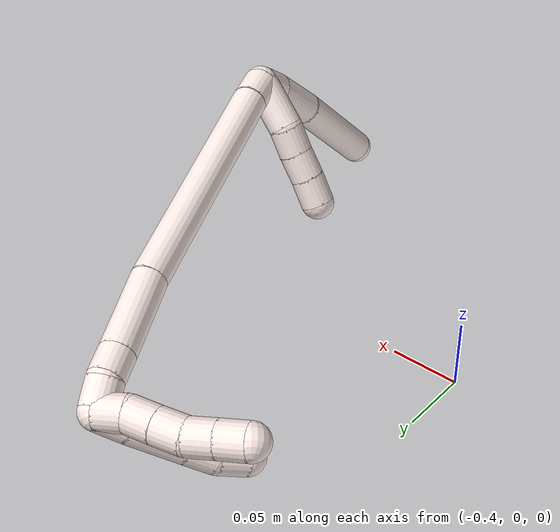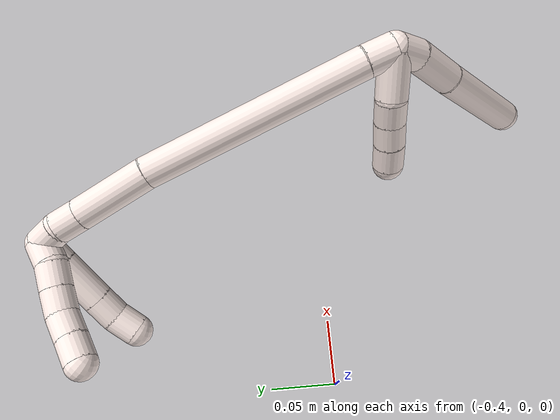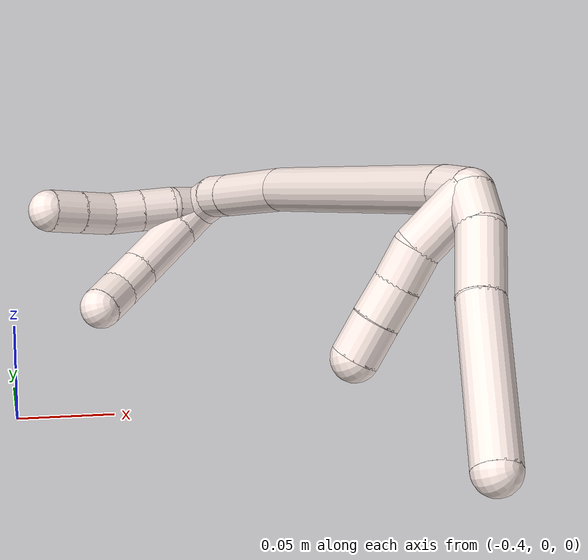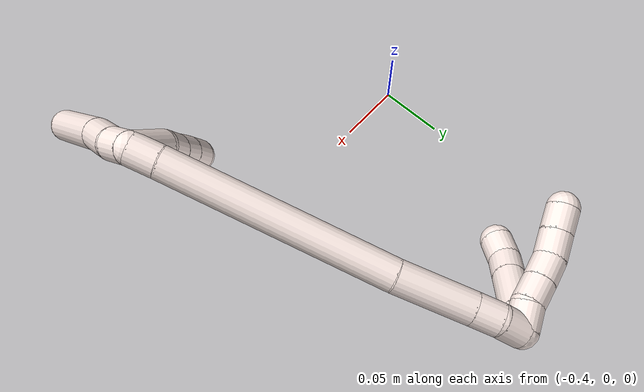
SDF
<sdf version="1.7">
 <world name="default">
  <model name="11">
   <static>0</static>
   <link name="11">
    <collision name="collision-cylinder-e_1_2_8">
     <pose>0.005707 -0.009033 -0.004207 2.00668 0.520073 0.790871</pose>
     <geometry><cylinder><radius>0.0125</radius><length>0.022967</length></cylinder></geometry>
     <surface>
      <friction><ode><mu>1.16</mu><mu2>1.16</mu2><slip1>0</slip1><slip2>0</slip2></ode></friction>
      <contact><ode><kp>1e+06</kp><kd>1</kd><max_vel>0</max_vel><min_depth>0.001</min_depth></ode></contact>
     </surface>
    </collision>
    <visual name="visual-cylinder-e_1_2_8">
     <pose>0.005707 -0.009033 -0.004207 2.00668 0.520073 0.790871</pose>
     <geometry><cylinder><radius>0.0125</radius><length>0.022967</length></cylinder></geometry>
     <material><ambient>1 0.933333 0.909804 1</ambient></material>
    </visual>
    <collision name="collision-cylinder-e_2_8_9">
     <pose>0.023161 -0.033569 -0.011413 1.76183 0.639657 0.763405</pose>
     <geometry><cylinder><radius>0.0125</radius><length>0.039361</length></cylinder></geometry>
     <surface>
      <friction><ode><mu>1.16</mu><mu2>1.16</mu2><slip1>0</slip1><slip2>0</slip2></ode></friction>
      <contact><ode><kp>1e+06</kp><kd>1</kd><max_vel>0</max_vel><min_depth>0.001</min_depth></ode></contact>
     </surface>
    </collision>
    <visual name="visual-cylinder-e_2_8_9">
     <pose>0.023161 -0.033569 -0.011413 1.76183 0.639657 0.763405</pose>
     <geometry><cylinder><radius>0.0125</radius><length>0.039361</length></cylinder></geometry>
     <material><ambient>1 0.933333 0.909804 1</ambient></material>
    </visual>
    <collision name="collision-cylinder-e_3_9_6">
     <pose>0.057748 -0.085632 -0.022366 1.78504 0.548043 0.671265</pose>
     <geometry><cylinder><radius>0.0125</radius><length>0.087672</length></cylinder></geometry>
     <surface>
      <friction><ode><mu>1.16</mu><mu2>1.16</mu2><slip1>0</slip1><slip2>0</slip2></ode></friction>
      <contact><ode><kp>1e+06</kp><kd>1</kd><max_vel>0</max_vel><min_depth>0.001</min_depth></ode></contact>
     </surface>
    </collision>
    <visual name="visual-cylinder-e_3_9_6">
     <pose>0.057748 -0.085632 -0.022366 1.78504 0.548043 0.671265</pose>
     <geometry><cylinder><radius>0.0125</radius><length>0.087672</length></cylinder></geometry>
     <material><ambient>1 0.933333 0.909804 1</ambient></material>
    </visual>
    <collision name="collision-cylinder-e_1_2_10">
     <pose>0.008967 -0.009202 0.013482 0.598888 0.502363 0.158109</pose>
     <geometry><cylinder><radius>0.0125</radius><length>0.037247</length></cylinder></geometry>
     <surface>
      <friction><ode><mu>1.16</mu><mu2>1.16</mu2><slip1>0</slip1><slip2>0</slip2></ode></friction>
      <contact><ode><kp>1e+06</kp><kd>1</kd><max_vel>0</max_vel><min_depth>0.001</min_depth></ode></contact>
     </surface>
    </collision>
    <visual name="visual-cylinder-e_1_2_10">
     <pose>0.008967 -0.009202 0.013482 0.598888 0.502363 0.158109</pose>
     <geometry><cylinder><radius>0.0125</radius><length>0.037247</length></cylinder></geometry>
     <material><ambient>1 0.933333 0.909804 1</ambient></material>
    </visual>
    <collision name="collision-cylinder-e_2_10_11">
     <pose>0.021674 -0.025658 0.033119 0.867227 0.374466 0.174985</pose>
     <geometry><cylinder><radius>0.0125</radius><length>0.020446</length></cylinder></geometry>
     <surface>
      <friction><ode><mu>1.16</mu><mu2>1.16</mu2><slip1>0</slip1><slip2>0</slip2></ode></friction>
      <contact><ode><kp>1e+06</kp><kd>1</kd><max_vel>0</max_vel><min_depth>0.001</min_depth></ode></contact>
     </surface>
    </collision>
    <visual name="visual-cylinder-e_2_10_11">
     <pose>0.021674 -0.025658 0.033119 0.867227 0.374466 0.174985</pose>
     <geometry><cylinder><radius>0.0125</radius><length>0.020446</length></cylinder></geometry>
     <material><ambient>1 0.933333 0.909804 1</ambient></material>
    </visual>
    <collision name="collision-cylinder-e_3_11_12">
     <pose>0.029741 -0.039969 0.045502 0.847663 0.431071 0.196919</pose>
     <geometry><cylinder><radius>0.0125</radius><length>0.020715</length></cylinder></geometry>
     <surface>
      <friction><ode><mu>1.16</mu><mu2>1.16</mu2><slip1>0</slip1><slip2>0</slip2></ode></friction>
      <contact><ode><kp>1e+06</kp><kd>1</kd><max_vel>0</max_vel><min_depth>0.001</min_depth></ode></contact>
     </surface>
    </collision>
    <visual name="visual-cylinder-e_3_11_12">
     <pose>0.029741 -0.039969 0.045502 0.847663 0.431071 0.196919</pose>
     <geometry><cylinder><radius>0.0125</radius><length>0.020715</length></cylinder></geometry>
     <material><ambient>1 0.933333 0.909804 1</ambient></material>
    </visual>
    <collision name="collision-cylinder-e_4_12_5">
     <pose>0.038088 -0.054559 0.058333 0.851159 0.381491 0.174606</pose>
     <geometry><cylinder><radius>0.0125</radius><length>0.021591</length></cylinder></geometry>
     <surface>
      <friction><ode><mu>1.16</mu><mu2>1.16</mu2><slip1>0</slip1><slip2>0</slip2></ode></friction>
      <contact><ode><kp>1e+06</kp><kd>1</kd><max_vel>0</max_vel><min_depth>0.001</min_depth></ode></contact>
     </surface>
    </collision>
    <visual name="visual-cylinder-e_4_12_5">
     <pose>0.038088 -0.054559 0.058333 0.851159 0.381491 0.174606</pose>
     <geometry><cylinder><radius>0.0125</radius><length>0.021591</length></cylinder></geometry>
     <material><ambient>1 0.933333 0.909804 1</ambient></material>
    </visual>
    <collision name="collision-cylinder-e_1_2_13">
     <pose>-0.004364 0.002376 0.010124 -0.230523 -0.397322 0.046606</pose>
     <geometry><cylinder><radius>0.0125</radius><length>0.022554</length></cylinder></geometry>
     <surface>
      <friction><ode><mu>1.16</mu><mu2>1.16</mu2><slip1>0</slip1><slip2>0</slip2></ode></friction>
      <contact><ode><kp>1e+06</kp><kd>1</kd><max_vel>0</max_vel><min_depth>0.001</min_depth></ode></contact>
     </surface>
    </collision>
    <visual name="visual-cylinder-e_1_2_13">
     <pose>-0.004364 0.002376 0.010124 -0.230523 -0.397322 0.046606</pose>
     <geometry><cylinder><radius>0.0125</radius><length>0.022554</length></cylinder></geometry>
     <material><ambient>1 0.933333 0.909804 1</ambient></material>
    </visual>
    <collision name="collision-cylinder-e_2_13_14">
     <pose>-0.041951 0.017623 0.101895 -0.15636 -0.382185 0.030308</pose>
     <geometry><cylinder><radius>0.0125</radius><length>0.178168</length></cylinder></geometry>
     <surface>
      <friction><ode><mu>1.16</mu><mu2>1.16</mu2><slip1>0</slip1><slip2>0</slip2></ode></friction>
      <contact><ode><kp>1e+06</kp><kd>1</kd><max_vel>0</max_vel><min_depth>0.001</min_depth></ode></contact>
     </surface>
    </collision>
    <visual name="visual-cylinder-e_2_13_14">
     <pose>-0.041951 0.017623 0.101895 -0.15636 -0.382185 0.030308</pose>
     <geometry><cylinder><radius>0.0125</radius><length>0.178168</length></cylinder></geometry>
     <material><ambient>1 0.933333 0.909804 1</ambient></material>
    </visual>
    <collision name="collision-cylinder-e_3_14_15">
     <pose>-0.083958 0.033656 0.211547 -0.11241 -0.302112 0.017128</pose>
     <geometry><cylinder><radius>0.0125</radius><length>0.059037</length></cylinder></geometry>
     <surface>
      <friction><ode><mu>1.16</mu><mu2>1.16</mu2><slip1>0</slip1><slip2>0</slip2></ode></friction>
      <contact><ode><kp>1e+06</kp><kd>1</kd><max_vel>0</max_vel><min_depth>0.001</min_depth></ode></contact>
     </surface>
    </collision>
    <visual name="visual-cylinder-e_3_14_15">
     <pose>-0.083958 0.033656 0.211547 -0.11241 -0.302112 0.017128</pose>
     <geometry><cylinder><radius>0.0125</radius><length>0.059037</length></cylinder></geometry>
     <material><ambient>1 0.933333 0.909804 1</ambient></material>
    </visual>
    <collision name="collision-cylinder-e_4_15_16">
     <pose>-0.095869 0.037964 0.249089 -0.119634 -0.314868 0.019014</pose>
     <geometry><cylinder><radius>0.0125</radius><length>0.020207</length></cylinder></geometry>
     <surface>
      <friction><ode><mu>1.16</mu><mu2>1.16</mu2><slip1>0</slip1><slip2>0</slip2></ode></friction>
      <contact><ode><kp>1e+06</kp><kd>1</kd><max_vel>0</max_vel><min_depth>0.001</min_depth></ode></contact>
     </surface>
    </collision>
    <visual name="visual-cylinder-e_4_15_16">
     <pose>-0.095869 0.037964 0.249089 -0.119634 -0.314868 0.019014</pose>
     <geometry><cylinder><radius>0.0125</radius><length>0.020207</length></cylinder></geometry>
     <material><ambient>1 0.933333 0.909804 1</ambient></material>
    </visual>
    <collision name="collision-cylinder-e_5_16_1">
     <pose>-0.101113 0.037322 0.268254 0.183741 -0.212692 -0.019669</pose>
     <geometry><cylinder><radius>0.0125</radius><length>0.020034</length></cylinder></geometry>
     <surface>
      <friction><ode><mu>1.16</mu><mu2>1.16</mu2><slip1>0</slip1><slip2>0</slip2></ode></friction>
      <contact><ode><kp>1e+06</kp><kd>1</kd><max_vel>0</max_vel><min_depth>0.001</min_depth></ode></contact>
     </surface>
    </collision>
    <visual name="visual-cylinder-e_5_16_1">
     <pose>-0.101113 0.037322 0.268254 0.183741 -0.212692 -0.019669</pose>
     <geometry><cylinder><radius>0.0125</radius><length>0.020034</length></cylinder></geometry>
     <material><ambient>1 0.933333 0.909804 1</ambient></material>
    </visual>
    <collision name="collision-cylinder-e_1_1_17">
     <pose>-0.094012 0.030902 0.280178 1.11013 1.05957 0.696679</pose>
     <geometry><cylinder><radius>0.0125</radius><length>0.021132</length></cylinder></geometry>
     <surface>
      <friction><ode><mu>1.16</mu><mu2>1.16</mu2><slip1>0</slip1><slip2>0</slip2></ode></friction>
      <contact><ode><kp>1e+06</kp><kd>1</kd><max_vel>0</max_vel><min_depth>0.001</min_depth></ode></contact>
     </surface>
    </collision>
    <visual name="visual-cylinder-e_1_1_17">
     <pose>-0.094012 0.030902 0.280178 1.11013 1.05957 0.696679</pose>
     <geometry><cylinder><radius>0.0125</radius><length>0.021132</length></cylinder></geometry>
     <material><ambient>1 0.933333 0.909804 1</ambient></material>
    </visual>
    <collision name="collision-cylinder-e_2_17_18">
     <pose>-0.067583 0.018091 0.285944 1.16994 1.0943 0.766972</pose>
     <geometry><cylinder><radius>0.0125</radius><length>0.038743</length></cylinder></geometry>
     <surface>
      <friction><ode><mu>1.16</mu><mu2>1.16</mu2><slip1>0</slip1><slip2>0</slip2></ode></friction>
      <contact><ode><kp>1e+06</kp><kd>1</kd><max_vel>0</max_vel><min_depth>0.001</min_depth></ode></contact>
     </surface>
    </collision>
    <visual name="visual-cylinder-e_2_17_18">
     <pose>-0.067583 0.018091 0.285944 1.16994 1.0943 0.766972</pose>
     <geometry><cylinder><radius>0.0125</radius><length>0.038743</length></cylinder></geometry>
     <material><ambient>1 0.933333 0.909804 1</ambient></material>
    </visual>
    <collision name="collision-cylinder-e_3_18_19">
     <pose>-0.041452 0.005686 0.291145 1.1811 1.09756 0.777979</pose>
     <geometry><cylinder><radius>0.0125</radius><length>0.020036</length></cylinder></geometry>
     <surface>
      <friction><ode><mu>1.16</mu><mu2>1.16</mu2><slip1>0</slip1><slip2>0</slip2></ode></friction>
      <contact><ode><kp>1e+06</kp><kd>1</kd><max_vel>0</max_vel><min_depth>0.001</min_depth></ode></contact>
     </surface>
    </collision>
    <visual name="visual-cylinder-e_3_18_19">
     <pose>-0.041452 0.005686 0.291145 1.1811 1.09756 0.777979</pose>
     <geometry><cylinder><radius>0.0125</radius><length>0.020036</length></cylinder></geometry>
     <material><ambient>1 0.933333 0.909804 1</ambient></material>
    </visual>
    <collision name="collision-cylinder-e_4_19_4">
     <pose>-0.023091 -0.001883 0.292172 1.77917 1.22338 1.42657</pose>
     <geometry><cylinder><radius>0.0125</radius><length>0.020088</length></cylinder></geometry>
     <surface>
      <friction><ode><mu>1.16</mu><mu2>1.16</mu2><slip1>0</slip1><slip2>0</slip2></ode></friction>
      <contact><ode><kp>1e+06</kp><kd>1</kd><max_vel>0</max_vel><min_depth>0.001</min_depth></ode></contact>
     </surface>
    </collision>
    <visual name="visual-cylinder-e_4_19_4">
     <pose>-0.023091 -0.001883 0.292172 1.77917 1.22338 1.42657</pose>
     <geometry><cylinder><radius>0.0125</radius><length>0.020088</length></cylinder></geometry>
     <material><ambient>1 0.933333 0.909804 1</ambient></material>
    </visual>
    <collision name="collision-cylinder-e_1_1_20">
     <pose>-0.093727 0.037912 0.279902 -0.866374 1.25327 -0.646188</pose>
     <geometry><cylinder><radius>0.0125</radius><length>0.02</length></cylinder></geometry>
     <surface>
      <friction><ode><mu>1.16</mu><mu2>1.16</mu2><slip1>0</slip1><slip2>0</slip2></ode></friction>
      <contact><ode><kp>1e+06</kp><kd>1</kd><max_vel>0</max_vel><min_depth>0.001</min_depth></ode></contact>
     </surface>
    </collision>
    <visual name="visual-cylinder-e_1_1_20">
     <pose>-0.093727 0.037912 0.279902 -0.866374 1.25327 -0.646188</pose>
     <geometry><cylinder><radius>0.0125</radius><length>0.02</length></cylinder></geometry>
     <material><ambient>1 0.933333 0.909804 1</ambient></material>
    </visual>
    <collision name="collision-cylinder-e_2_20_21">
     <pose>-0.075534 0.042044 0.286545 -0.362707 1.05388 -0.212567</pose>
     <geometry><cylinder><radius>0.0125</radius><length>0.02</length></cylinder></geometry>
     <surface>
      <friction><ode><mu>1.16</mu><mu2>1.16</mu2><slip1>0</slip1><slip2>0</slip2></ode></friction>
      <contact><ode><kp>1e+06</kp><kd>1</kd><max_vel>0</max_vel><min_depth>0.001</min_depth></ode></contact>
     </surface>
    </collision>
    <visual name="visual-cylinder-e_2_20_21">
     <pose>-0.075534 0.042044 0.286545 -0.362707 1.05388 -0.212567</pose>
     <geometry><cylinder><radius>0.0125</radius><length>0.02</length></cylinder></geometry>
     <material><ambient>1 0.933333 0.909804 1</ambient></material>
    </visual>
    <collision name="collision-cylinder-e_3_21_22">
     <pose>-0.057996 0.045488 0.295514 -0.370718 1.08533 -0.225205</pose>
     <geometry><cylinder><radius>0.0125</radius><length>0.02</length></cylinder></geometry>
     <surface>
      <friction><ode><mu>1.16</mu><mu2>1.16</mu2><slip1>0</slip1><slip2>0</slip2></ode></friction>
      <contact><ode><kp>1e+06</kp><kd>1</kd><max_vel>0</max_vel><min_depth>0.001</min_depth></ode></contact>
     </surface>
    </collision>
    <visual name="visual-cylinder-e_3_21_22">
     <pose>-0.057996 0.045488 0.295514 -0.370718 1.08533 -0.225205</pose>
     <geometry><cylinder><radius>0.0125</radius><length>0.02</length></cylinder></geometry>
     <material><ambient>1 0.933333 0.909804 1</ambient></material>
    </visual>
    <collision name="collision-cylinder-e_4_22_23">
     <pose>-0.039771 0.049952 0.301944 -0.927075 1.21673 -0.670046</pose>
     <geometry><cylinder><radius>0.0125</radius><length>0.02</length></cylinder></geometry>
     <surface>
      <friction><ode><mu>1.16</mu><mu2>1.16</mu2><slip1>0</slip1><slip2>0</slip2></ode></friction>
      <contact><ode><kp>1e+06</kp><kd>1</kd><max_vel>0</max_vel><min_depth>0.001</min_depth></ode></contact>
     </surface>
    </collision>
    <visual name="visual-cylinder-e_4_22_23">
     <pose>-0.039771 0.049952 0.301944 -0.927075 1.21673 -0.670046</pose>
     <geometry><cylinder><radius>0.0125</radius><length>0.02</length></cylinder></geometry>
     <material><ambient>1 0.933333 0.909804 1</ambient></material>
    </visual>
    <collision name="collision-cylinder-e_5_23_3">
     <pose>-0.021057 0.055573 0.306207 -0.917229 1.20388 -0.654009</pose>
     <geometry><cylinder><radius>0.0125</radius><length>0.02</length></cylinder></geometry>
     <surface>
      <friction><ode><mu>1.16</mu><mu2>1.16</mu2><slip1>0</slip1><slip2>0</slip2></ode></friction>
      <contact><ode><kp>1e+06</kp><kd>1</kd><max_vel>0</max_vel><min_depth>0.001</min_depth></ode></contact>
     </surface>
    </collision>
    <visual name="visual-cylinder-e_5_23_3">
     <pose>-0.021057 0.055573 0.306207 -0.917229 1.20388 -0.654009</pose>
     <geometry><cylinder><radius>0.0125</radius><length>0.02</length></cylinder></geometry>
     <material><ambient>1 0.933333 0.909804 1</ambient></material>
    </visual>
    <collision name="collision-sphere-3">
     <pose>-0.011723 0.058422 0.308388 0 -0 0</pose>
     <geometry><sphere><radius>0.0125</radius></sphere></geometry>
     <surface>
      <friction><ode><mu>1.16</mu><mu2>1.16</mu2><slip1>0</slip1><slip2>0</slip2></ode></friction>
      <contact><ode><kp>1e+06</kp><kd>1</kd><max_vel>0</max_vel><min_depth>0.001</min_depth></ode></contact>
     </surface>
    </collision>
    <visual name="visual-sphere-3">
     <pose>-0.011723 0.058422 0.308388 0 -0 0</pose>
     <geometry><sphere><radius>0.0125</radius></sphere></geometry>
     <material><ambient>1 0.933333 0.909804 1</ambient></material>
    </visual>
    <collision name="collision-sphere-23">
     <pose>-0.030392 0.052725 0.304025 0 -0 0</pose>
     <geometry><sphere><radius>0.0125</radius></sphere></geometry>
     <surface>
      <friction><ode><mu>1.16</mu><mu2>1.16</mu2><slip1>0</slip1><slip2>0</slip2></ode></friction>
      <contact><ode><kp>1e+06</kp><kd>1</kd><max_vel>0</max_vel><min_depth>0.001</min_depth></ode></contact>
     </surface>
    </collision>
    <visual name="visual-sphere-23">
     <pose>-0.030392 0.052725 0.304025 0 -0 0</pose>
     <geometry><sphere><radius>0.0125</radius></sphere></geometry>
     <material><ambient>1 0.933333 0.909804 1</ambient></material>
    </visual>
    <collision name="collision-sphere-22">
     <pose>-0.049151 0.047179 0.299864 0 -0 0</pose>
     <geometry><sphere><radius>0.0125</radius></sphere></geometry>
     <surface>
      <friction><ode><mu>1.16</mu><mu2>1.16</mu2><slip1>0</slip1><slip2>0</slip2></ode></friction>
      <contact><ode><kp>1e+06</kp><kd>1</kd><max_vel>0</max_vel><min_depth>0.001</min_depth></ode></contact>
     </surface>
    </collision>
    <visual name="visual-sphere-22">
     <pose>-0.049151 0.047179 0.299864 0 -0 0</pose>
     <geometry><sphere><radius>0.0125</radius></sphere></geometry>
     <material><ambient>1 0.933333 0.909804 1</ambient></material>
    </visual>
    <collision name="collision-sphere-21">
     <pose>-0.06684 0.043798 0.291165 0 -0 0</pose>
     <geometry><sphere><radius>0.0125</radius></sphere></geometry>
     <surface>
      <friction><ode><mu>1.16</mu><mu2>1.16</mu2><slip1>0</slip1><slip2>0</slip2></ode></friction>
      <contact><ode><kp>1e+06</kp><kd>1</kd><max_vel>0</max_vel><min_depth>0.001</min_depth></ode></contact>
     </surface>
    </collision>
    <visual name="visual-sphere-21">
     <pose>-0.06684 0.043798 0.291165 0 -0 0</pose>
     <geometry><sphere><radius>0.0125</radius></sphere></geometry>
     <material><ambient>1 0.933333 0.909804 1</ambient></material>
    </visual>
    <collision name="collision-sphere-20">
     <pose>-0.084227 0.040291 0.281924 0 -0 0</pose>
     <geometry><sphere><radius>0.0125</radius></sphere></geometry>
     <surface>
      <friction><ode><mu>1.16</mu><mu2>1.16</mu2><slip1>0</slip1><slip2>0</slip2></ode></friction>
      <contact><ode><kp>1e+06</kp><kd>1</kd><max_vel>0</max_vel><min_depth>0.001</min_depth></ode></contact>
     </surface>
    </collision>
    <visual name="visual-sphere-20">
     <pose>-0.084227 0.040291 0.281924 0 -0 0</pose>
     <geometry><sphere><radius>0.0125</radius></sphere></geometry>
     <material><ambient>1 0.933333 0.909804 1</ambient></material>
    </visual>
    <collision name="collision-sphere-4">
     <pose>-0.013647 -0.005229 0.291465 0 -0 0</pose>
     <geometry><sphere><radius>0.0125</radius></sphere></geometry>
     <surface>
      <friction><ode><mu>1.16</mu><mu2>1.16</mu2><slip1>0</slip1><slip2>0</slip2></ode></friction>
      <contact><ode><kp>1e+06</kp><kd>1</kd><max_vel>0</max_vel><min_depth>0.001</min_depth></ode></contact>
     </surface>
    </collision>
    <visual name="visual-sphere-4">
     <pose>-0.013647 -0.005229 0.291465 0 -0 0</pose>
     <geometry><sphere><radius>0.0125</radius></sphere></geometry>
     <material><ambient>1 0.933333 0.909804 1</ambient></material>
    </visual>
    <collision name="collision-sphere-11">
     <pose>0.025413 -0.032914 0.039275 0 -0 0</pose>
     <geometry><sphere><radius>0.0125</radius></sphere></geometry>
     <surface>
      <friction><ode><mu>1.16</mu><mu2>1.16</mu2><slip1>0</slip1><slip2>0</slip2></ode></friction>
      <contact><ode><kp>1e+06</kp><kd>1</kd><max_vel>0</max_vel><min_depth>0.001</min_depth></ode></contact>
     </surface>
    </collision>
    <visual name="visual-sphere-11">
     <pose>0.025413 -0.032914 0.039275 0 -0 0</pose>
     <geometry><sphere><radius>0.0125</radius></sphere></geometry>
     <material><ambient>1 0.933333 0.909804 1</ambient></material>
    </visual>
    <collision name="collision-sphere-10">
     <pose>0.017935 -0.018403 0.026964 0 -0 0</pose>
     <geometry><sphere><radius>0.0125</radius></sphere></geometry>
     <surface>
      <friction><ode><mu>1.16</mu><mu2>1.16</mu2><slip1>0</slip1><slip2>0</slip2></ode></friction>
      <contact><ode><kp>1e+06</kp><kd>1</kd><max_vel>0</max_vel><min_depth>0.001</min_depth></ode></contact>
     </surface>
    </collision>
    <visual name="visual-sphere-10">
     <pose>0.017935 -0.018403 0.026964 0 -0 0</pose>
     <geometry><sphere><radius>0.0125</radius></sphere></geometry>
     <material><ambient>1 0.933333 0.909804 1</ambient></material>
    </visual>
    <collision name="collision-sphere-6">
     <pose>0.080587 -0.122193 -0.030321 0 -0 0</pose>
     <geometry><sphere><radius>0.0125</radius></sphere></geometry>
     <surface>
      <friction><ode><mu>1.16</mu><mu2>1.16</mu2><slip1>0</slip1><slip2>0</slip2></ode></friction>
      <contact><ode><kp>1e+06</kp><kd>1</kd><max_vel>0</max_vel><min_depth>0.001</min_depth></ode></contact>
     </surface>
    </collision>
    <visual name="visual-sphere-6">
     <pose>0.080587 -0.122193 -0.030321 0 -0 0</pose>
     <geometry><sphere><radius>0.0125</radius></sphere></geometry>
     <material><ambient>1 0.933333 0.909804 1</ambient></material>
    </visual>
    <collision name="collision-sphere-9">
     <pose>0.034908 -0.049071 -0.014411 0 -0 0</pose>
     <geometry><sphere><radius>0.0125</radius></sphere></geometry>
     <surface>
      <friction><ode><mu>1.16</mu><mu2>1.16</mu2><slip1>0</slip1><slip2>0</slip2></ode></friction>
      <contact><ode><kp>1e+06</kp><kd>1</kd><max_vel>0</max_vel><min_depth>0.001</min_depth></ode></contact>
     </surface>
    </collision>
    <visual name="visual-sphere-9">
     <pose>0.034908 -0.049071 -0.014411 0 -0 0</pose>
     <geometry><sphere><radius>0.0125</radius></sphere></geometry>
     <material><ambient>1 0.933333 0.909804 1</ambient></material>
    </visual>
    <collision name="collision-sphere-2">
     <geometry><sphere><radius>0.0125</radius></sphere></geometry>
     <surface>
      <friction><ode><mu>1.16</mu><mu2>1.16</mu2><slip1>0</slip1><slip2>0</slip2></ode></friction>
      <contact><ode><kp>1e+06</kp><kd>1</kd><max_vel>0</max_vel><min_depth>0.001</min_depth></ode></contact>
     </surface>
    </collision>
    <visual name="visual-sphere-2">
     <geometry><sphere><radius>0.0125</radius></sphere></geometry>
     <material><ambient>1 0.933333 0.909804 1</ambient></material>
    </visual>
    <collision name="collision-sphere-19">
     <pose>-0.032535 0.001463 0.29288 0 -0 0</pose>
     <geometry><sphere><radius>0.0125</radius></sphere></geometry>
     <surface>
      <friction><ode><mu>1.16</mu><mu2>1.16</mu2><slip1>0</slip1><slip2>0</slip2></ode></friction>
      <contact><ode><kp>1e+06</kp><kd>1</kd><max_vel>0</max_vel><min_depth>0.001</min_depth></ode></contact>
     </surface>
    </collision>
    <visual name="visual-sphere-19">
     <pose>-0.032535 0.001463 0.29288 0 -0 0</pose>
     <geometry><sphere><radius>0.0125</radius></sphere></geometry>
     <material><ambient>1 0.933333 0.909804 1</ambient></material>
    </visual>
    <collision name="collision-sphere-8">
     <pose>0.011413 -0.018067 -0.008415 0 -0 0</pose>
     <geometry><sphere><radius>0.0125</radius></sphere></geometry>
     <surface>
      <friction><ode><mu>1.16</mu><mu2>1.16</mu2><slip1>0</slip1><slip2>0</slip2></ode></friction>
      <contact><ode><kp>1e+06</kp><kd>1</kd><max_vel>0</max_vel><min_depth>0.001</min_depth></ode></contact>
     </surface>
    </collision>
    <visual name="visual-sphere-8">
     <pose>0.011413 -0.018067 -0.008415 0 -0 0</pose>
     <geometry><sphere><radius>0.0125</radius></sphere></geometry>
     <material><ambient>1 0.933333 0.909804 1</ambient></material>
    </visual>
    <collision name="collision-sphere-12">
     <pose>0.034069 -0.047024 0.051729 0 -0 0</pose>
     <geometry><sphere><radius>0.0125</radius></sphere></geometry>
     <surface>
      <friction><ode><mu>1.16</mu><mu2>1.16</mu2><slip1>0</slip1><slip2>0</slip2></ode></friction>
      <contact><ode><kp>1e+06</kp><kd>1</kd><max_vel>0</max_vel><min_depth>0.001</min_depth></ode></contact>
     </surface>
    </collision>
    <visual name="visual-sphere-12">
     <pose>0.034069 -0.047024 0.051729 0 -0 0</pose>
     <geometry><sphere><radius>0.0125</radius></sphere></geometry>
     <material><ambient>1 0.933333 0.909804 1</ambient></material>
    </visual>
    <collision name="collision-sphere-5">
     <pose>0.042107 -0.062094 0.064937 0 -0 0</pose>
     <geometry><sphere><radius>0.0125</radius></sphere></geometry>
     <surface>
      <friction><ode><mu>1.16</mu><mu2>1.16</mu2><slip1>0</slip1><slip2>0</slip2></ode></friction>
      <contact><ode><kp>1e+06</kp><kd>1</kd><max_vel>0</max_vel><min_depth>0.001</min_depth></ode></contact>
     </surface>
    </collision>
    <visual name="visual-sphere-5">
     <pose>0.042107 -0.062094 0.064937 0 -0 0</pose>
     <geometry><sphere><radius>0.0125</radius></sphere></geometry>
     <material><ambient>1 0.933333 0.909804 1</ambient></material>
    </visual>
    <collision name="collision-sphere-13">
     <pose>-0.008727 0.004752 0.020247 0 -0 0</pose>
     <geometry><sphere><radius>0.0125</radius></sphere></geometry>
     <surface>
      <friction><ode><mu>1.16</mu><mu2>1.16</mu2><slip1>0</slip1><slip2>0</slip2></ode></friction>
      <contact><ode><kp>1e+06</kp><kd>1</kd><max_vel>0</max_vel><min_depth>0.001</min_depth></ode></contact>
     </surface>
    </collision>
    <visual name="visual-sphere-13">
     <pose>-0.008727 0.004752 0.020247 0 -0 0</pose>
     <geometry><sphere><radius>0.0125</radius></sphere></geometry>
     <material><ambient>1 0.933333 0.909804 1</ambient></material>
    </visual>
    <collision name="collision-sphere-14">
     <pose>-0.075175 0.030495 0.183544 0 -0 0</pose>
     <geometry><sphere><radius>0.0125</radius></sphere></geometry>
     <surface>
      <friction><ode><mu>1.16</mu><mu2>1.16</mu2><slip1>0</slip1><slip2>0</slip2></ode></friction>
      <contact><ode><kp>1e+06</kp><kd>1</kd><max_vel>0</max_vel><min_depth>0.001</min_depth></ode></contact>
     </surface>
    </collision>
    <visual name="visual-sphere-14">
     <pose>-0.075175 0.030495 0.183544 0 -0 0</pose>
     <geometry><sphere><radius>0.0125</radius></sphere></geometry>
     <material><ambient>1 0.933333 0.909804 1</ambient></material>
    </visual>
    <collision name="collision-sphere-15">
     <pose>-0.09274 0.036817 0.239551 0 -0 0</pose>
     <geometry><sphere><radius>0.0125</radius></sphere></geometry>
     <surface>
      <friction><ode><mu>1.16</mu><mu2>1.16</mu2><slip1>0</slip1><slip2>0</slip2></ode></friction>
      <contact><ode><kp>1e+06</kp><kd>1</kd><max_vel>0</max_vel><min_depth>0.001</min_depth></ode></contact>
     </surface>
    </collision>
    <visual name="visual-sphere-15">
     <pose>-0.09274 0.036817 0.239551 0 -0 0</pose>
     <geometry><sphere><radius>0.0125</radius></sphere></geometry>
     <material><ambient>1 0.933333 0.909804 1</ambient></material>
    </visual>
    <collision name="collision-sphere-16">
     <pose>-0.098999 0.039111 0.258628 0 -0 0</pose>
     <geometry><sphere><radius>0.0125</radius></sphere></geometry>
     <surface>
      <friction><ode><mu>1.16</mu><mu2>1.16</mu2><slip1>0</slip1><slip2>0</slip2></ode></friction>
      <contact><ode><kp>1e+06</kp><kd>1</kd><max_vel>0</max_vel><min_depth>0.001</min_depth></ode></contact>
     </surface>
    </collision>
    <visual name="visual-sphere-16">
     <pose>-0.098999 0.039111 0.258628 0 -0 0</pose>
     <geometry><sphere><radius>0.0125</radius></sphere></geometry>
     <material><ambient>1 0.933333 0.909804 1</ambient></material>
    </visual>
    <collision name="collision-sphere-1">
     <pose>-0.103227 0.035533 0.27788 0 -0 0</pose>
     <geometry><sphere><radius>0.0125</radius></sphere></geometry>
     <surface>
      <friction><ode><mu>1.16</mu><mu2>1.16</mu2><slip1>0</slip1><slip2>0</slip2></ode></friction>
      <contact><ode><kp>1e+06</kp><kd>1</kd><max_vel>0</max_vel><min_depth>0.001</min_depth></ode></contact>
     </surface>
    </collision>
    <visual name="visual-sphere-1">
     <pose>-0.103227 0.035533 0.27788 0 -0 0</pose>
     <geometry><sphere><radius>0.0125</radius></sphere></geometry>
     <material><ambient>1 0.933333 0.909804 1</ambient></material>
    </visual>
    <collision name="collision-sphere-18">
     <pose>-0.050369 0.00991 0.289411 0 -0 0</pose>
     <geometry><sphere><radius>0.0125</radius></sphere></geometry>
     <surface>
      <friction><ode><mu>1.16</mu><mu2>1.16</mu2><slip1>0</slip1><slip2>0</slip2></ode></friction>
      <contact><ode><kp>1e+06</kp><kd>1</kd><max_vel>0</max_vel><min_depth>0.001</min_depth></ode></contact>
     </surface>
    </collision>
    <visual name="visual-sphere-18">
     <pose>-0.050369 0.00991 0.289411 0 -0 0</pose>
     <geometry><sphere><radius>0.0125</radius></sphere></geometry>
     <material><ambient>1 0.933333 0.909804 1</ambient></material>
    </visual>
    <collision name="collision-sphere-17">
     <pose>-0.084797 0.026272 0.282476 0 -0 0</pose>
     <geometry><sphere><radius>0.0125</radius></sphere></geometry>
     <surface>
      <friction><ode><mu>1.16</mu><mu2>1.16</mu2><slip1>0</slip1><slip2>0</slip2></ode></friction>
      <contact><ode><kp>1e+06</kp><kd>1</kd><max_vel>0</max_vel><min_depth>0.001</min_depth></ode></contact>
     </surface>
    </collision>
    <visual name="visual-sphere-17">
     <pose>-0.084797 0.026272 0.282476 0 -0 0</pose>
     <geometry><sphere><radius>0.0125</radius></sphere></geometry>
     <material><ambient>1 0.933333 0.909804 1</ambient></material>
    </visual>
    <inertial>
     <pose>-0.026443 0.001113 0.133678 0 -0 0</pose>
     <mass>0.75</mass>
     <inertia>
      <ixx>0.000596</ixx>
      <ixy>0</ixy>
      <ixz>0</ixz>
      <iyy>0.000573</iyy>
      <iyz>0</iyz>
      <izz>0.000151</izz>
     </inertia>
    </inertial>
   </link>
   <pose>-0.178907 -0.058497 0.126277 1.95257 0.006065 -2.41989</pose>
  </model>
 </world>
</sdf>
